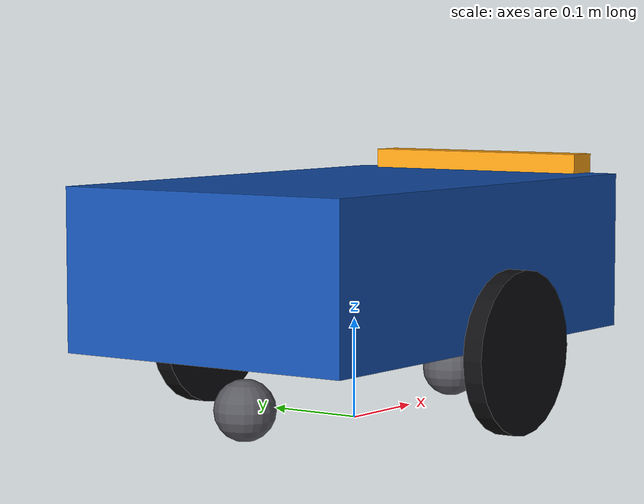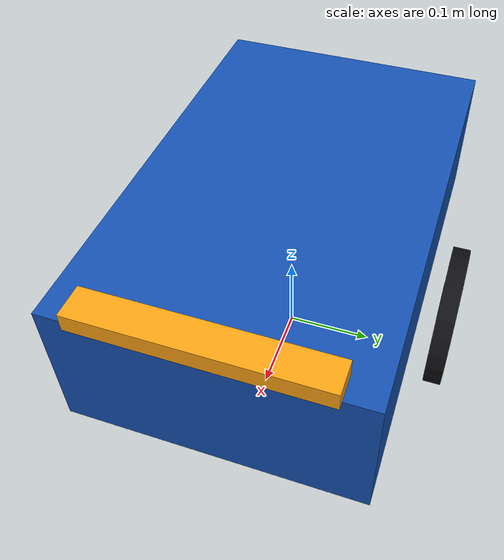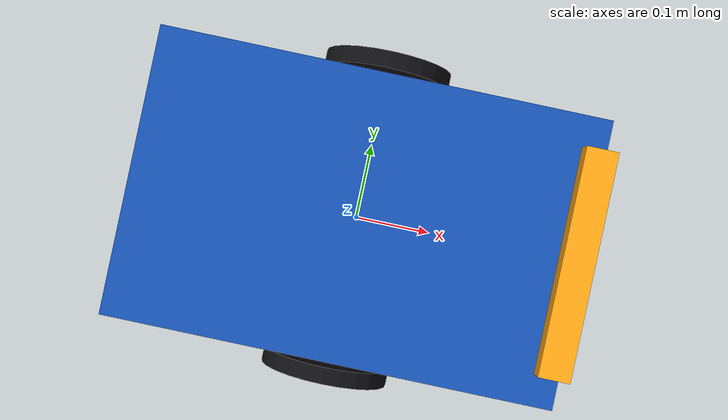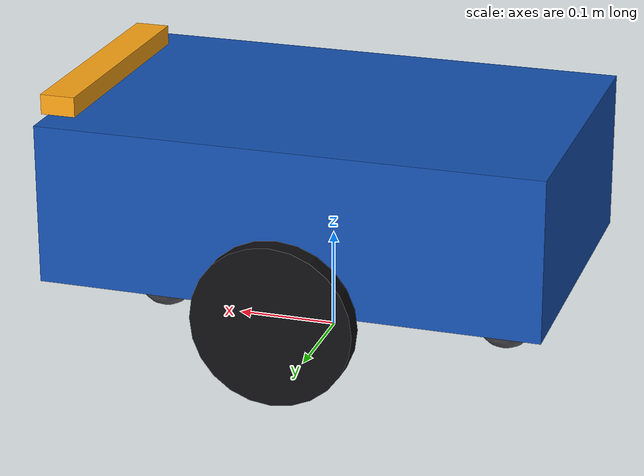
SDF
<?xml version="1.0"?>
<sdf version="1.8">
  <model name="warehouse_robot">
    <link name="base_link">
      <pose>0 0 0.16 0 0 0</pose>
      <inertial>
        <mass>4.0</mass>
        <!-- Uniform 0.50 x 0.32 x 0.16 m box: m/12 times squared side sums. -->
        <inertia><ixx>0.042666667</ixx><iyy>0.091866667</iyy><izz>0.117466667</izz></inertia>
      </inertial>
      <collision name="body_collision">
        <geometry><box><size>0.50 0.32 0.16</size></box></geometry>
      </collision>
      <visual name="body_visual">
        <geometry><box><size>0.50 0.32 0.16</size></box></geometry>
        <material><ambient>0.08 0.32 0.70 1</ambient><diffuse>0.08 0.32 0.70 1</diffuse></material>
      </visual>
      <visual name="front_marker">
        <pose>0.24 0 0.09 0 0 0</pose>
        <geometry><box><size>0.035 0.25 0.02</size></box></geometry>
        <material><ambient>1 0.65 0.08 1</ambient><diffuse>1 0.65 0.08 1</diffuse></material>
      </visual>
    </link>
    <link name="left_wheel">
      <pose>0 0.19 0.08 0 0 0</pose>
      <inertial>
        <mass>0.20</mass>
        <!-- Solid cylinder about y: Iyy=m*r^2/2; Ixx=Izz=m*(3*r^2+w^2)/12. -->
        <inertia><ixx>0.000326667</ixx><iyy>0.00064</iyy><izz>0.000326667</izz></inertia>
      </inertial>
      <collision name="wheel_collision">
        <pose>0 0 0 1.570796327 0 0</pose>
        <geometry><cylinder><radius>0.08</radius><length>0.02</length></cylinder></geometry>
        <surface><friction><ode><mu>1.0</mu><mu2>1.0</mu2></ode></friction></surface>
      </collision>
      <visual name="wheel_visual">
        <pose>0 0 0 1.570796327 0 0</pose>
        <geometry><cylinder><radius>0.08</radius><length>0.02</length></cylinder></geometry>
        <material><ambient>0.06 0.06 0.07 1</ambient><diffuse>0.06 0.06 0.07 1</diffuse></material>
      </visual>
    </link>
    <joint name="left_wheel_joint" type="revolute">
      <parent>base_link</parent><child>left_wheel</child>
      <axis><xyz>0 1 0</xyz><limit><lower>-1e16</lower><upper>1e16</upper></limit></axis>
    </joint>
    <link name="right_wheel">
      <pose>0 -0.19 0.08 0 0 0</pose>
      <inertial>
        <mass>0.20</mass>
        <!-- Solid cylinder about y: Iyy=m*r^2/2; Ixx=Izz=m*(3*r^2+w^2)/12. -->
        <inertia><ixx>0.000326667</ixx><iyy>0.00064</iyy><izz>0.000326667</izz></inertia>
      </inertial>
      <collision name="wheel_collision">
        <pose>0 0 0 1.570796327 0 0</pose>
        <geometry><cylinder><radius>0.08</radius><length>0.02</length></cylinder></geometry>
        <surface><friction><ode><mu>1.0</mu><mu2>1.0</mu2></ode></friction></surface>
      </collision>
      <visual name="wheel_visual">
        <pose>0 0 0 1.570796327 0 0</pose>
        <geometry><cylinder><radius>0.08</radius><length>0.02</length></cylinder></geometry>
        <material><ambient>0.06 0.06 0.07 1</ambient><diffuse>0.06 0.06 0.07 1</diffuse></material>
      </visual>
    </link>
    <joint name="right_wheel_joint" type="revolute">
      <parent>base_link</parent><child>right_wheel</child>
      <axis><xyz>0 1 0</xyz><limit><lower>-1e16</lower><upper>1e16</upper></limit></axis>
    </joint>
    <!-- Frictionless spherical support: a simplified caster contact. -->
    <link name="front_support">
      <pose>0.18 0 0.03 0 0 0</pose>
      <inertial>
        <mass>0.05</mass>
        <inertia><ixx>0.000018</ixx><iyy>0.000018</iyy><izz>0.000018</izz></inertia>
      </inertial>
      <collision name="support_collision">
        <geometry><sphere><radius>0.03</radius></sphere></geometry>
        <surface><friction><ode><mu>0</mu><mu2>0</mu2></ode></friction></surface>
      </collision>
      <visual name="support_visual">
        <geometry><sphere><radius>0.03</radius></sphere></geometry>
        <material><ambient>0.35 0.35 0.38 1</ambient><diffuse>0.35 0.35 0.38 1</diffuse></material>
      </visual>
    </link>
    <joint name="front_support_joint" type="fixed">
      <parent>base_link</parent><child>front_support</child>
    </joint>
    <!-- Frictionless spherical support: a simplified caster contact. -->
    <link name="rear_support">
      <pose>-0.18 0 0.03 0 0 0</pose>
      <inertial>
        <mass>0.05</mass>
        <inertia><ixx>0.000018</ixx><iyy>0.000018</iyy><izz>0.000018</izz></inertia>
      </inertial>
      <collision name="support_collision">
        <geometry><sphere><radius>0.03</radius></sphere></geometry>
        <surface><friction><ode><mu>0</mu><mu2>0</mu2></ode></friction></surface>
      </collision>
      <visual name="support_visual">
        <geometry><sphere><radius>0.03</radius></sphere></geometry>
        <material><ambient>0.35 0.35 0.38 1</ambient><diffuse>0.35 0.35 0.38 1</diffuse></material>
      </visual>
    </link>
    <joint name="rear_support_joint" type="fixed">
      <parent>base_link</parent><child>rear_support</child>
    </joint>
    <plugin filename="libignition-gazebo-diff-drive-system.so"
            name="ignition::gazebo::systems::DiffDrive">
      <left_joint>left_wheel_joint</left_joint>
      <right_joint>right_wheel_joint</right_joint>
      <wheel_separation>0.363</wheel_separation>
      <wheel_radius>0.08</wheel_radius>
      <topic>/warehouse/cmd_vel</topic>
      <odom_topic>/warehouse/odom</odom_topic>
      <frame_id>odom</frame_id>
      <child_frame_id>warehouse_robot/base_link</child_frame_id>
      <odom_publish_frequency>20</odom_publish_frequency>
      <max_linear_velocity>0.6</max_linear_velocity>
      <min_linear_velocity>-0.6</min_linear_velocity>
      <max_angular_velocity>1.5</max_angular_velocity>
      <min_angular_velocity>-1.5</min_angular_velocity>
      <max_linear_acceleration>1.5</max_linear_acceleration>
      <min_linear_acceleration>-1.5</min_linear_acceleration>
      <max_angular_acceleration>1.5</max_angular_acceleration>
      <min_angular_acceleration>-1.5</min_angular_acceleration>
    </plugin>
  </model>
</sdf>
